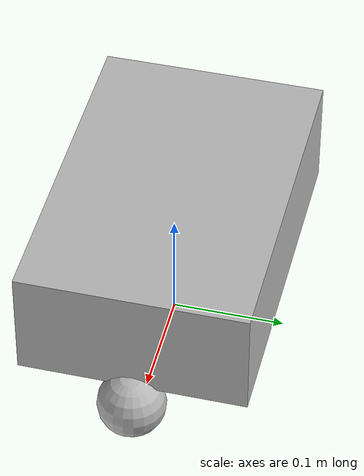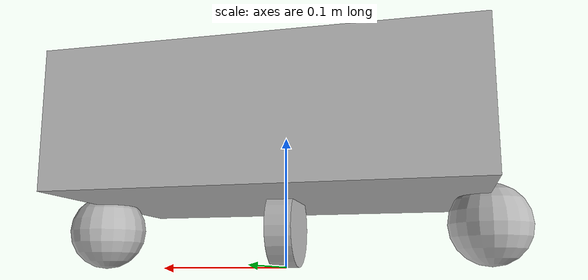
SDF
<?xml version='1.0'?>
   <sdf version='1.4'>
     <model name="carriage">

      <link name='chassis'>
        <pose>0 0 .1 0 0 0</pose>
        <inertial>
          <mass>50</mass>
        </inertial>
        <collision name='collision'>
          <geometry>
            <box>
              <size>.3 .2 .1</size>
            </box>
          </geometry>
        </collision>

        <visual name='visual'>
          <geometry>
            <box>
              <size>.3 .2 .1</size>
            </box>
          </geometry>
        </visual>

        <collision name='caster_left_collision'>
          <pose>-0.15 0 -0.07 0 0 0</pose>
          <geometry>
            <sphere>
              <radius>.03</radius>
            </sphere>
          </geometry>

          <surface>
            <friction>
              <ode>
                <mu>0</mu>
                <mu2>0</mu2>
                <slip1>1.0</slip1>
                <slip2>1.0</slip2>
              </ode>
            </friction>
          </surface>
        </collision>

        <visual name='caster_left_visual'>
          <pose>-0.15 0 -0.07 0 0 0</pose>
          <geometry>
            <sphere>
              <radius>.03</radius>
            </sphere>
          </geometry>
        </visual>

        <collision name='caster_right_collision'>
          <pose>0.15 0 -0.07 0 0 0</pose>
          <geometry>
            <sphere>
              <radius>.03</radius>
            </sphere>
          </geometry>

          <surface>
            <friction>
              <ode>
                <mu>0</mu>
                <mu2>0</mu2>
                <slip1>1.0</slip1>
                <slip2>1.0</slip2>
              </ode>
            </friction>
          </surface>
        </collision>

        <visual name='caster_right_visual'>
          <pose>0.15 0 -0.07 0 0 0</pose>
          <geometry>
            <sphere>
              <radius>.03</radius>
            </sphere>
          </geometry>
        </visual>
      </link>

      <link name="steer">
        <pose>0 0 0.05 0 0 0</pose>
      </link>

        <link name="wheel">
          <pose>0 0 0.03 0 1.5707 0</pose>
          <inertial>
            <mass>10</mass>
          </inertial>
          <collision name="collision">
            <geometry>
              <cylinder>
                <radius>.03</radius>
                <length>.02</length>
              </cylinder>
            </geometry>
              <surface>
                <friction>
                  <ode>
                    <mu>100000</mu>
                    <mu2>100000</mu2>
                    <slip1>0</slip1>
                    <slip2>0</slip2>
                  </ode>
                </friction>
              </surface>
              <max_contacts>10</max_contacts>
          </collision>
          <visual name="visual">
            <geometry>
              <cylinder>
                <radius>.03</radius>
                <length>.02</length>
              </cylinder>
            </geometry>
          </visual>
        </link>

        <joint name='steer_joint' type='revolute'>
          <child>steer</child>
          <parent>chassis</parent>
          <axis>
            <xyz>0 0 1</xyz>
            <dynamics>
              <spring_reference>0</spring_reference>
              <spring_stiffness>7</spring_stiffness>
            </dynamics>
            <limit>
              <lower>-0.52</lower>
              <upper>0.52</upper>
            </limit>
          </axis>
        </joint>

        <joint name='wheel_joint' type='revolute'>
          <child>wheel</child>
          <parent>steer</parent>
          <axis>
            <xyz>1 0 0</xyz>
            <dynamics>
              <spring_reference>0</spring_reference>
            </dynamics>
          </axis>
        </joint>
    </model>
   </sdf>
